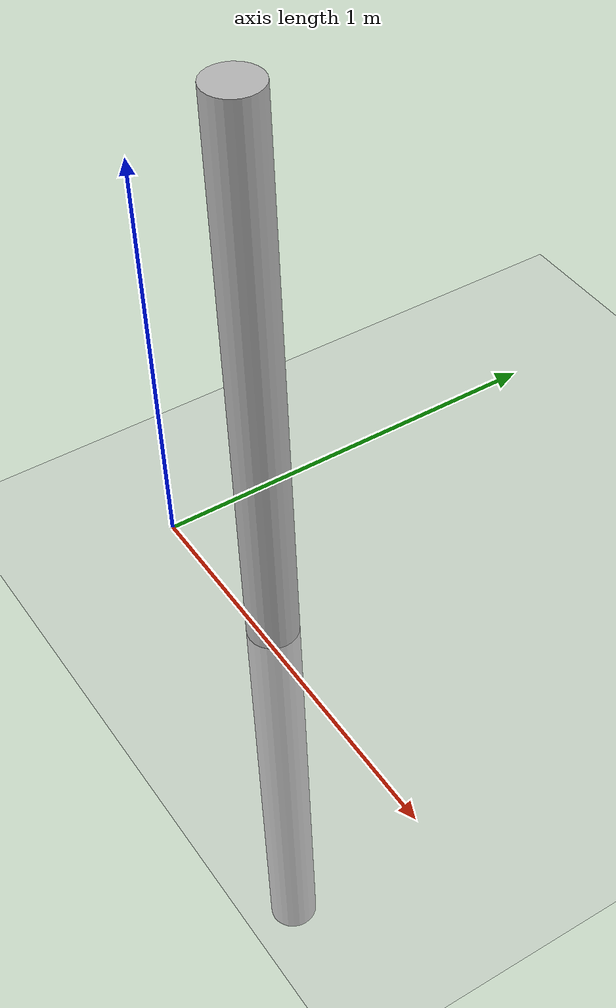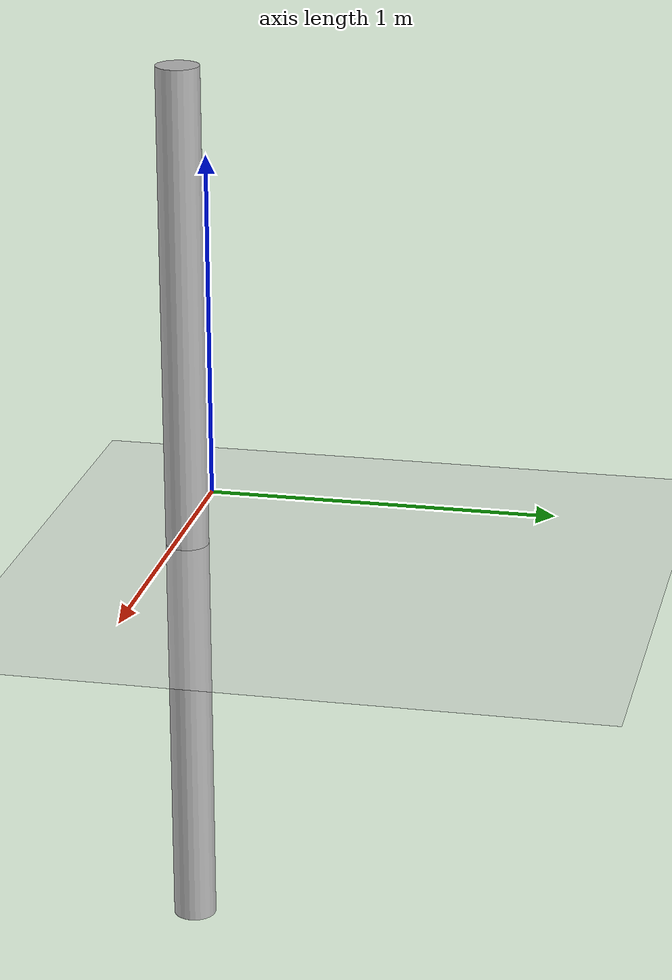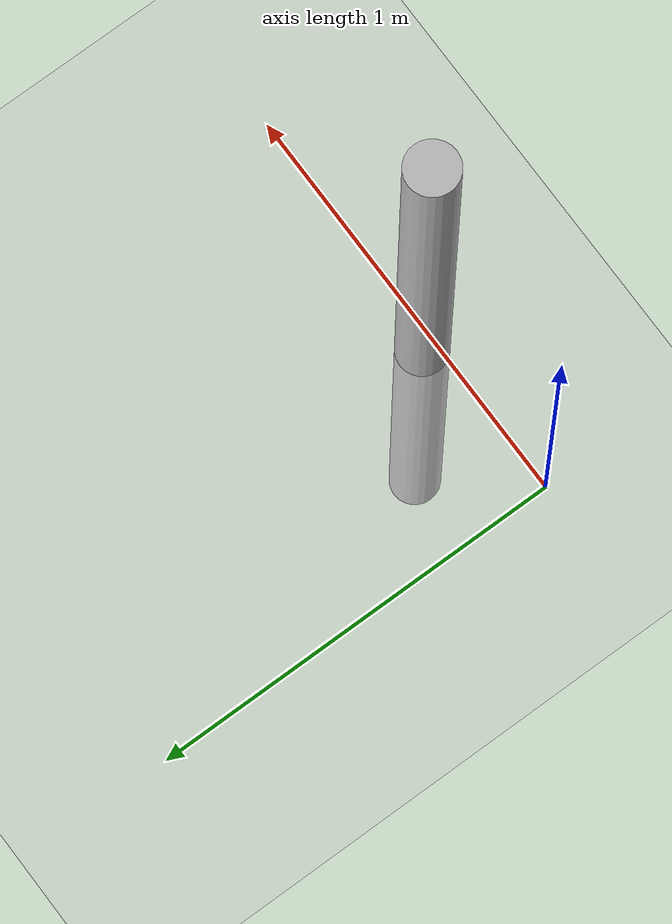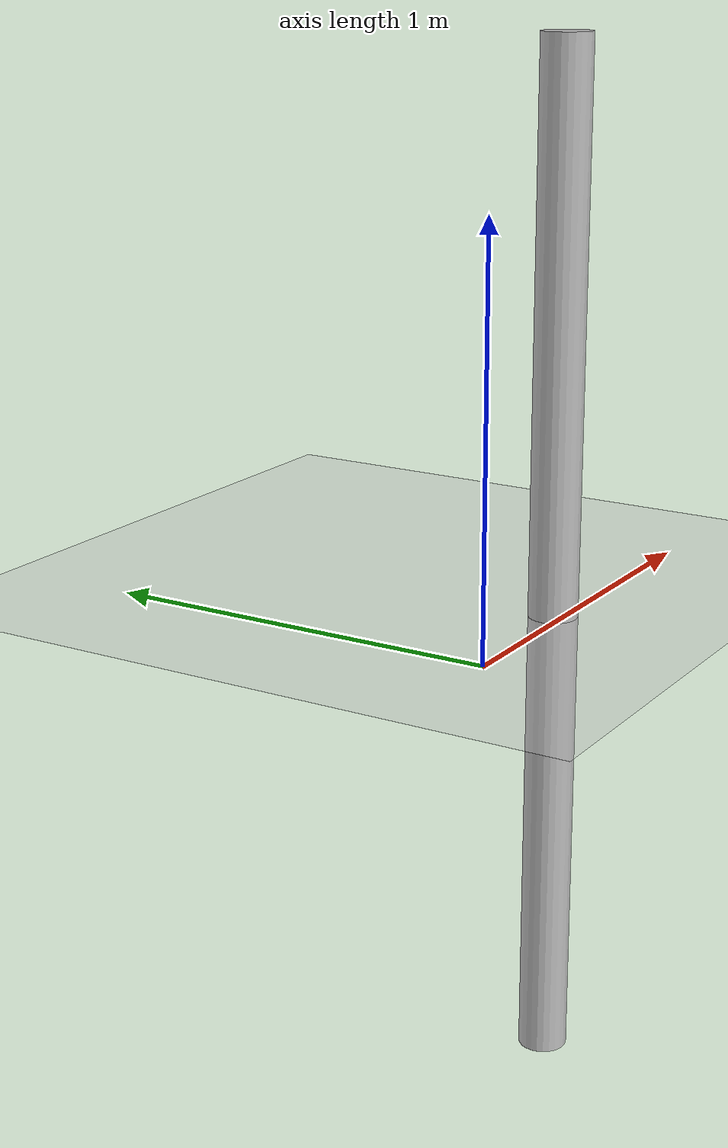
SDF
<?xml version="1.0" ?>
<sdf version="1.5">
  <world name="default">
    <include>
      <uri>model://sun</uri>
    </include>
    <include>
      <uri>model://ground_plane</uri>
    </include>
    <include>
      <pose>0.3 -0.10 0 0 0 0</pose>
      <uri>model://vluu_pole</uri>
    </include>
  </world>
</sdf>

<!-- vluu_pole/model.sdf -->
<sdf version="1.4">
  <model name="my_model">
    <pose>0 0 0.4 0 0 0</pose>
    <static>true</static>
      <link name="pole">
        <pose>0.1 0.13 0.1 0 0 0</pose>

        <collision name="collision">
          <geometry>
            <cylinder>
              <radius>0.060</radius>
              <length>2.5</length>
            </cylinder>
          </geometry>
        </collision>

        <surface>
            <friction>
              <ode>
                <mu>1</mu>
                <mu2>1</mu2>
              </ode>
            </friction>
          </surface>

        <visual name="visual">
          <geometry>
            <cylinder>
              <radius>0.060</radius>
              <length>2.5</length>
            </cylinder>
          </geometry>
        </visual>
      </link>
  </model>
</sdf>
